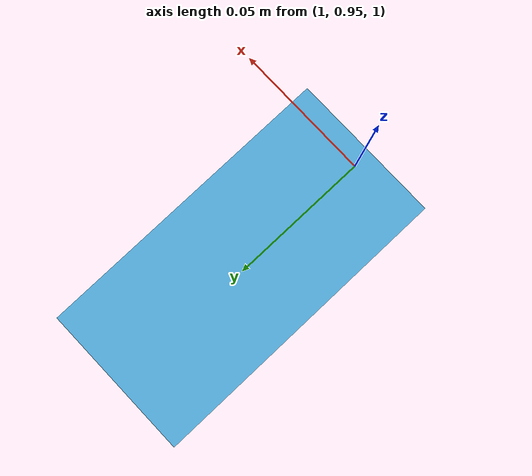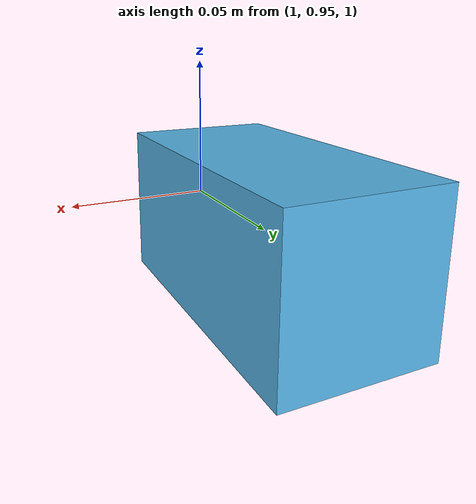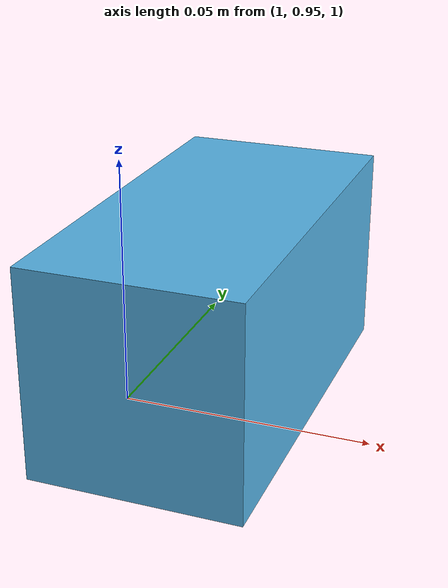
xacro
<?xml version="1.0" ?>
<robot name="camera" xmlns:xacro="http://www.ros.org/wiki/xacro">
  <xacro:arg name="camera_parent_name" default="base_footprint"/>
  <!-- URDF -->
  <xacro:include filename="$(find raspimouse_description)/urdf/camera.urdf.xacro"/>
  <xacro:camera_urdf parent_frame="$(arg camera_parent_name)"/>

  <!-- Gazebo -->
</robot>

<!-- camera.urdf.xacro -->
<robot
  name="camera_urdf"
  xmlns:sensor="http://playerstage.sourceforge.net/gazebo/xmlschema/#sensor"
  xmlns:controller="http://playerstage.sourceforge.net/gazebo/xmlschema/#controller"
  xmlns:interface="http://playerstage.sourceforge.net/gazebo/xmlschema/#interface"
  xmlns:xacro="http://ros.org/wiki/xacro">

<xacro:macro name="camera_urdf" params="parent_frame">
  <link name="${parent_frame}"/>
  <xacro:property name="size_box" value="0.05 0.1 0.05"/>
  <link name="camera_link">
    <visual>
      <geometry>
        <box size="${size_box}"/>
      </geometry>
    </visual>
    <!-- Add inertial -->
    <inertial>
      <origin rpy="0 0 0" xyz="0 0 0"/>
      <mass value="0.001"/>
      <inertia ixx="0.01" ixy="0" ixz="0" iyy="0.01" iyz="0" izz="0.01"/>
    </inertial>
    <collision>
      <geometry>
        <box size="${size_box}"/>
      </geometry>
    </collision>
  </link>

  <joint name="world_to_camera" type="fixed"> <!--Testing floating joint-->
    <origin xyz="1 1 1" rpy="3.1415926535897931 0 0"/>
    <parent link="${parent_frame}"/>
    <child link="camera_link"/>
  </joint>
</xacro:macro>
</robot>
